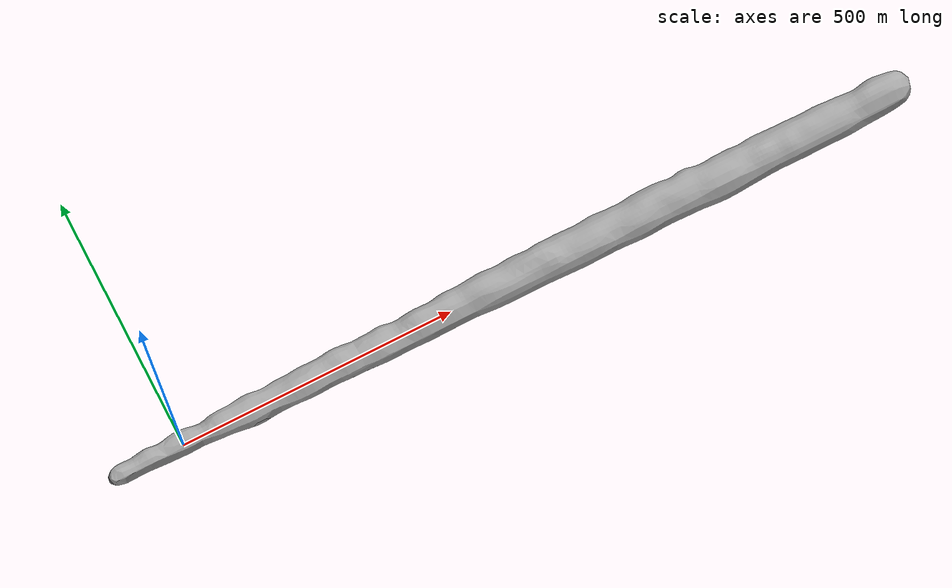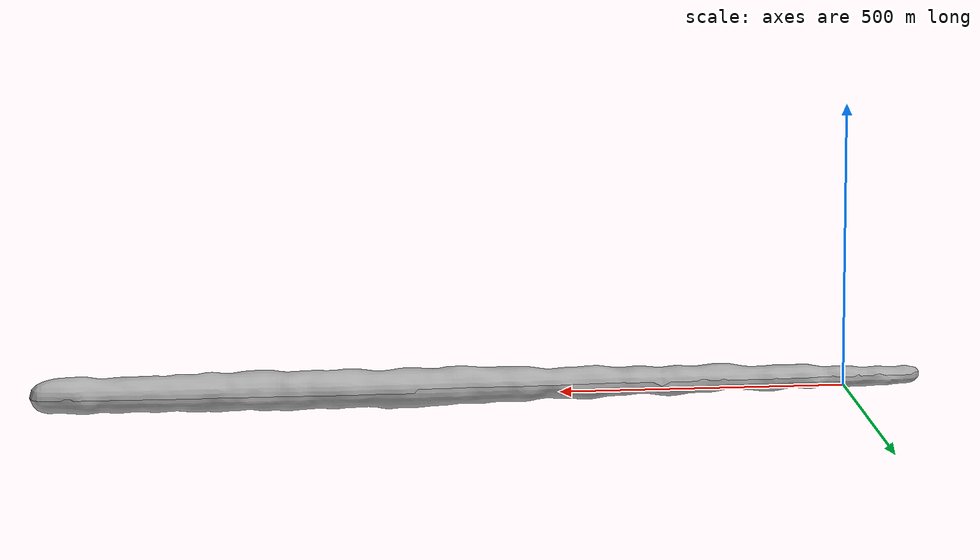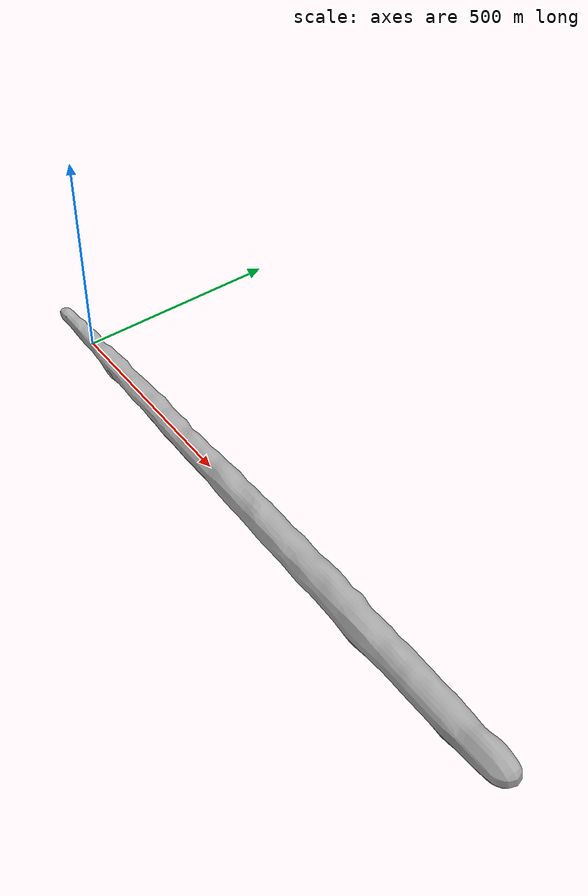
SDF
<?xml version='1.0'?>
<sdf version='1.4'>
    <model name="tube">
        <static>true</static>
        <!-- Give the base link a unique name -->
        <link name="tube_top">
            <pose>-100 -0.5 23 0 0 0</pose>
            <visual name="tube_top_vis">
                <geometry>
                    <mesh>
                        <uri>model://tube/poisson_top.dae</uri>
                    </mesh>
                </geometry>

                <material>
                    <ambient>0.662 0.662 0.662 1</ambient>
                    <diffuse>0.662 0.662 0.662 1</diffuse>
                    <specular>0.1 0.1 0.1 1</specular>
                    <emissive>0 0 0 0</emissive>
                </material>
            </visual>
        </link>

        <link name="tube_bot">
            <pose>-100 -0.5 23 0 0 0</pose>
            <visual name="tube_top_vis">
                <geometry>
                    <mesh>
                        <uri>model://tube/poisson_bot.dae</uri>
                    </mesh>
                </geometry>

                <material>
                    <ambient>0.662 0.662 0.662 1</ambient>
                    <diffuse>0.662 0.662 0.662 1</diffuse>
                    <specular>0.1 0.1 0.1 1</specular>
                    <emissive>0 0 0 0</emissive>
                </material>
            </visual>

            <collision name="tube_collision">
                <geometry>
                    <mesh>
                        <uri>model://tube/poisson_bot.dae</uri>
                    </mesh>
                </geometry>
            </collision>
        </link>
    </model>
</sdf>
